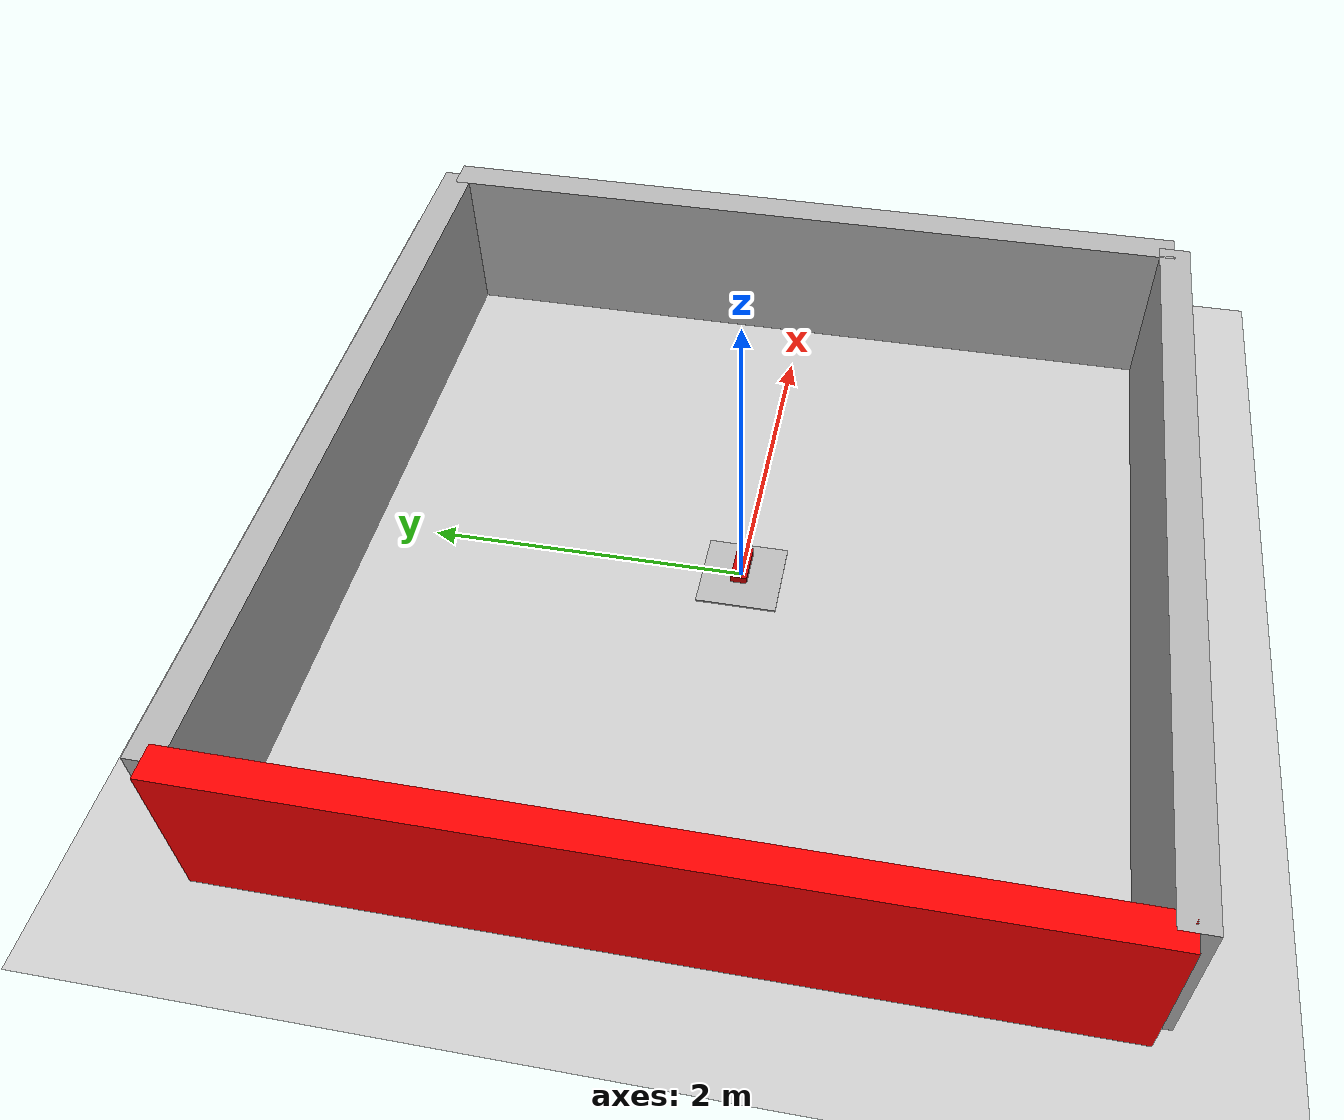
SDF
<?xml version="1.0"?>
<sdf version="1.6">
  <world name="ring_world">

    <plugin filename="gz-sim-physics-system"
            name="gz::sim::systems::Physics"/>
    <plugin filename="gz-sim-user-commands-system"
            name="gz::sim::systems::UserCommands"/>
    <plugin filename="gz-sim-scene-broadcaster-system"
            name="gz::sim::systems::SceneBroadcaster"/>
    <plugin filename="gz-sim-sensors-system"
            name="gz::sim::systems::Sensors"/>
    <plugin filename="gz-sim-imu-system"
            name="gz::sim::systems::Imu"/>
    <plugin
      filename="gz-sim-user-commands-system"
      name="gz::sim::systems::UserCommands">
    </plugin>

    <physics name="default_physics" type="ode">
      <real_time_update_rate>1000.0</real_time_update_rate>
      <max_step_size>0.001</max_step_size>
      <real_time_factor>1.0</real_time_factor>
    </physics>

    <light name="sun" type="directional">
      <cast_shadows>true</cast_shadows>
      <pose>0 0 10 0 0 0</pose>
      <diffuse>0.8 0.8 0.8 1</diffuse>
      <specular>0.2 0.2 0.2 1</specular>
      <attenuation>
        <range>1000</range>
        <constant>0.9</constant>
        <linear>0.01</linear>
        <quadratic>0.001</quadratic>
      </attenuation>
      <direction>-0.5 0.1 -0.9</direction>
    </light>

    <model name="ground_plane">
      <static>true</static>
      <link name="link">
        <collision name="collision">
          <geometry>
            <plane>
              <normal>0 0 1</normal>
              <size>100 100</size>
            </plane>
          </geometry>
        </collision>
        <visual name="visual">
          <geometry>
            <plane>
              <normal>0 0 1</normal>
              <size>100 100</size>
            </plane>
          </geometry>
          <material>
            <ambient>0.8 0.8 0.8 1</ambient>
            <diffuse>0.8 0.8 0.8 1</diffuse>
            <specular>0.8 0.8 0.8 1</specular>
          </material>
        </visual>
      </link>
    </model>

    <model name="wall_front">
      <static>true</static>
      <pose>2.5 0 0.5 0 0 0</pose>
      <link name="link">
        <collision name="collision">
          <geometry><box><size>0.2 5 1</size></box></geometry>
        </collision>
        <visual name="visual">
          <geometry><box><size>0.2 5 1</size></box></geometry>
          <material>
            <ambient>0.7 0.7 0.7 1</ambient>
            <diffuse>0.7 0.7 0.7 1</diffuse>
          </material>
        </visual>
      </link>
    </model>

    <model name="wall_back_red">
      <static>true</static>
      <pose>-2.5 0 0.5 0 0 0</pose>
      <link name="link">
        <collision name="collision">
          <geometry><box><size>0.2 5 1</size></box></geometry>
        </collision>
        <visual name="visual">
          <geometry><box><size>0.2 5 1</size></box></geometry>
          <material>
            <ambient>1 0 0 1</ambient>
            <diffuse>1 0 0 1</diffuse>
            <specular>0.5 0 0 1</specular>
          </material>
        </visual>
      </link>
    </model>

    <model name="wall_left">
      <static>true</static>
      <pose>0 2.5 0.5 0 0 1.5708</pose>
      <link name="link">
        <collision name="collision">
          <geometry><box><size>0.2 5 1</size></box></geometry>
        </collision>
        <visual name="visual">
          <geometry><box><size>0.2 5 1</size></box></geometry>
          <material>
            <ambient>0.7 0.7 0.7 1</ambient>
            <diffuse>0.7 0.7 0.7 1</diffuse>
          </material>
        </visual>
      </link>
    </model>

    <model name="wall_right">
      <static>true</static>
      <pose>0 -2.5 0.5 0 0 1.5708</pose>
      <link name="link">
        <collision name="collision">
          <geometry><box><size>0.2 5 1</size></box></geometry>
        </collision>
        <visual name="visual">
          <geometry><box><size>0.2 5 1</size></box></geometry>
          <material>
            <ambient>0.7 0.7 0.7 1</ambient>
            <diffuse>0.7 0.7 0.7 1</diffuse>
          </material>
        </visual>
      </link>
    </model>

    <model name="joint_controller_demo">
      <pose>0 0 0 0 0 0</pose>
      <link name="base_link">
        <pose>0.0 0.0 0.0 0 0 0</pose>
        <inertial>
          <inertia>
            <ixx>2.501</ixx>
            <ixy>0</ixy>
            <ixz>0</ixz>
            <iyy>2.501</iyy>
            <iyz>0</iyz>
            <izz>5</izz>
          </inertia>
          <mass>120.0</mass>
        </inertial>
        <visual name="base_visual">
          <pose>0.0 0.0 0.0 0 0 0</pose>
          <geometry>
            <box>
              <size>0.5 0.5 0.01</size>
            </box>
          </geometry>
        </visual>
        <collision name="base_collision">
          <pose>0.0 0.0 0.0 0 0 0</pose>
          <geometry>
            <box>
              <size>0.5 0.5 0.01</size>
            </box>
          </geometry>
        </collision>
      </link>
      <link name="rotor">
        <pose>0.0 0.0 0.1 0 0 0</pose>
        <inertial>
          <inertia>
            <ixx>0.032</ixx>
            <ixy>0</ixy>
            <ixz>0</ixz>
            <iyy>0.032</iyy>
            <iyz>0</iyz>
            <izz>0.00012</izz>
          </inertia>
          <mass>0.6</mass>
        </inertial>
        <visual name="visual">
          <geometry>
            <box>
              <size>0.25 0.1 0.05</size>
            </box>
          </geometry>
          <material>
            <ambient>0.2 0.8 0.2 1</ambient>
            <diffuse>0.8 0 0 1</diffuse>
          </material>
        </visual>
        <collision name="collision">
          <geometry>
            <box>
              <size>0.25 0.1 0.05</size>
            </box>
          </geometry>
        </collision>
      </link>

      <joint name="world_fixed" type="fixed">
        <parent>world</parent>
        <child>base_link</child>
      </joint>

      <joint name="j1" type="revolute">
        <pose>0 0 -0.5 0 0 0</pose>
        <parent>base_link</parent>
        <child>rotor</child>
        <axis>
          <xyz>0 0 1</xyz>
        </axis>
      </joint>
      <plugin
        filename="gz-sim-joint-controller-system"
        name="gz::sim::systems::JointController">
        <joint_name>j1</joint_name>
        <initial_velocity>1.0</initial_velocity>
        </plugin>
    </model>
  </world>
</sdf>
